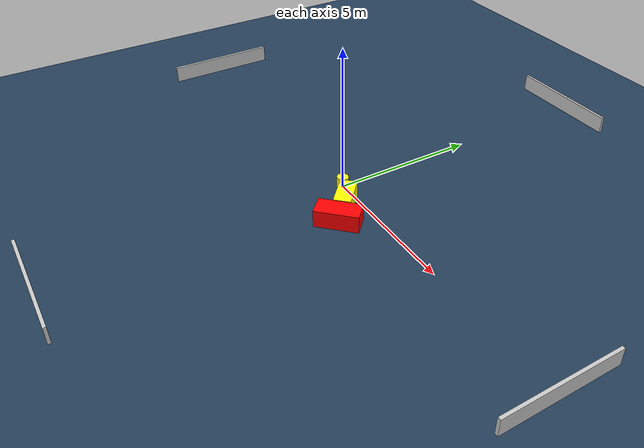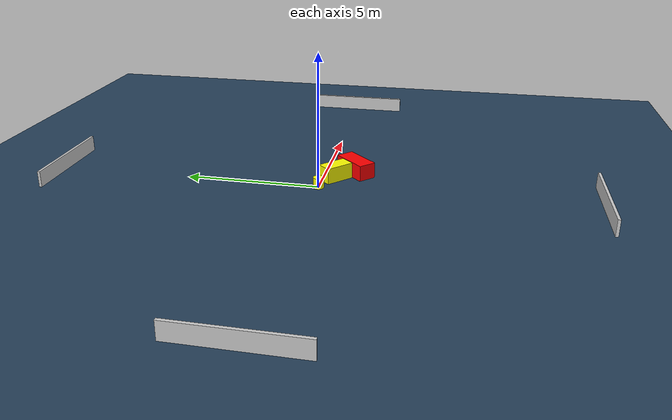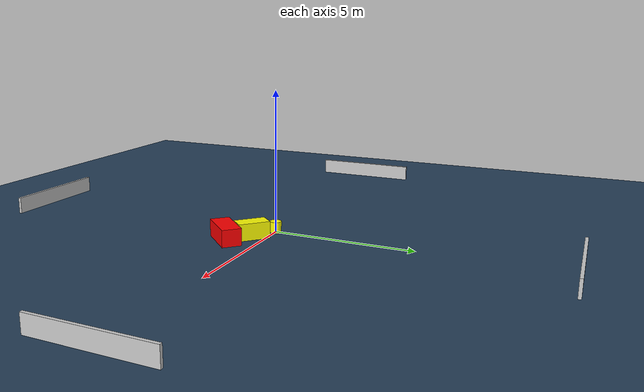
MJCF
<?xml version="1.0" ?>
<mujoco model="generated_environment">
  <option timestep="0.01" integrator="RK4" cone="elliptic"/>
  <default>
    <geom density="1"/>
  </default>
  <asset>
    <texture builtin="gradient" height="3072" name="skybox" rgb1="0.3 0.5 0.7" rgb2="0 0 0" type="skybox" width="512"/>
    <texture builtin="checker" height="300" name="groundplane" rgb1="0.2 0.3 0.4" rgb2="0.1 0.2 0.3" type="2d" width="300"/>
    <material name="groundplane" reflectance="0.2" texrepeat="5 5" texture="groundplane"/>
  </asset>
  <worldbody>
    <light dir="0 0 -1" directional="true" pos="0 0 1.5"/>
    <geom condim="3" friction="0.5 0.005 0.001" material="groundplane" name="floor" pos="0 0 0" size="0 0 0.05" type="plane"/>
    <body name="walls">
      <geom name="wall_1" condim="4" pos="-10.0 0.0 0.3" rgba="0.800000011920929 0.800000011920929 0.800000011920929 1.0" size="0.05 2.0 0.3" type="box"/>
      <geom name="wall_2" condim="4" pos="10.0 0.0 0.3" rgba="0.800000011920929 0.800000011920929 0.800000011920929 1.0" size="0.05 2.0 0.3" type="box"/>
      <geom name="wall_3" condim="4" pos="0.0 -10.0 0.3" rgba="0.800000011920929 0.800000011920929 0.800000011920929 1.0" size="2.0 0.05 0.3" type="box"/>
      <geom name="wall_4" condim="4" pos="0.0 10.0 0.3" rgba="0.800000011920929 0.800000011920929 0.800000011920929 1.0" size="2.0 0.05 0.3" type="box"/>
    </body>
    <body name="robot">
      <joint name="joint_x" type="slide" pos="0 0 0" axis="1 0 0"/>
      <joint name="joint_y" type="slide" pos="0 0 0" axis="0 1 0"/>
      <geom name="robot" type="cylinder" pos="0.0 0.0 0.2" size="0.2 0.2 0.0" mass="5.0" friction="1.0 0.005 0.0001" condim="4" rgba="1.0 1.0 0.0 1.0"/>
    </body>
    <body name="obstacle_1_movable">
      <geom name="obstacle_1_movable" condim="4" pos="0.9383130146654616 -0.466320482748261 0.3" euler="0 0 317.00938645119703" friction="0.0 0.005 0.001" rgba="1.0 1.0 0.0 1.0" size="0.5616454908571242 0.28568545370373066 0.3" type="box" mass="0.1"/>
      <joint type="free"/>
    </body>
    <body name="obstacle_2_static">
      <geom name="obstacle_2_static" condim="4" pos="1.5978303299460865 -1.1263671122458339 0.3" euler="0 0 135.41541136211814" friction="0.0 0.005 0.001" rgba="1.0 0.0 0.0 1.0" size="0.3428839372098049 0.7249433041635054 0.3" type="box"/>
    </body>
  </worldbody>
  <actuator>
    <motor name="actuator_x" joint="joint_x" gear="1" ctrlrange="-1 1"/>
    <motor name="actuator_y" joint="joint_y" gear="1" ctrlrange="-1 1"/>
  </actuator>
</mujoco>
